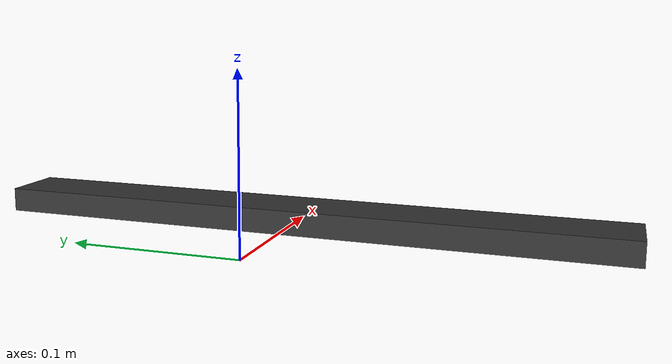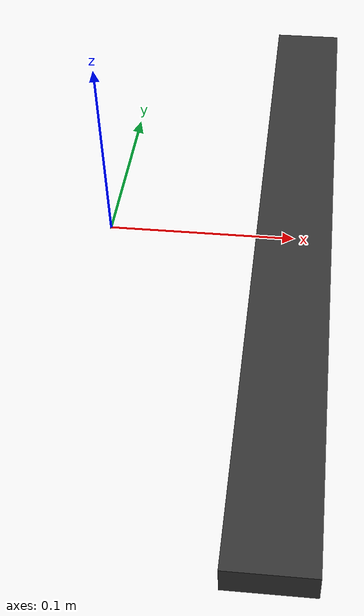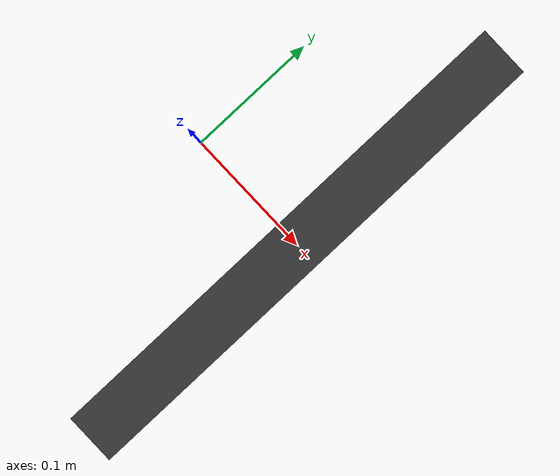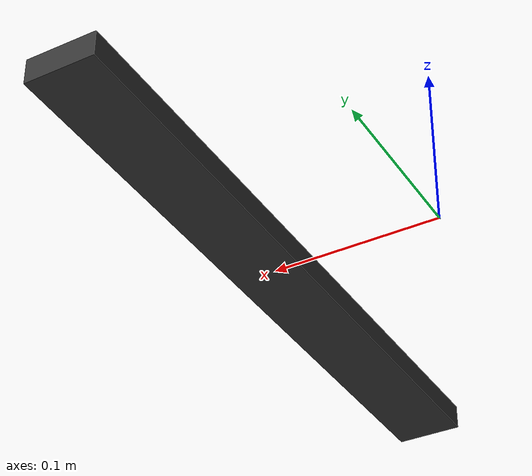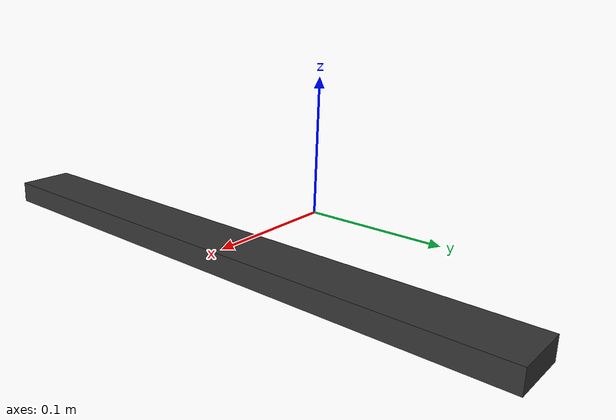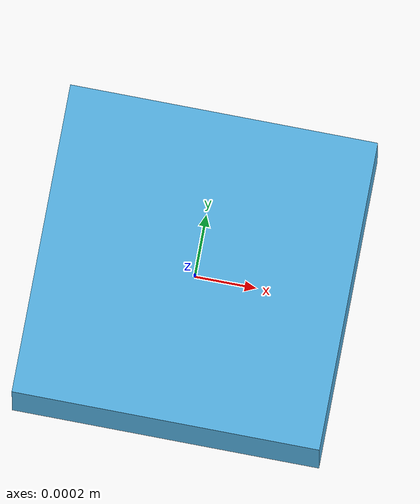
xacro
<?xml version="1.0"?>
<robot name="ribot" xmlns:xacro="http://ros.org/wiki/xacro">

    <!-- ribot is a simple robotic system containing one rgb camera and an imu on top of a tripop.  -->

    <!-- Define  properties -->
    <xacro:property name="M_PI" value="3.1415926535897931" />
    <material name="Orange">
        <color rgba="1.0 0.4 0.0 1.0"/>
    </material>

    <!-- Colors -->
    <material name="tripod_color">
        <color rgba="0.21 0.21 .21 1"/>
    </material>

    <xacro:macro name="default_inertial">
        <inertial>
            <mass value="1"/>
            <inertia ixx="1.0" ixy="0.0" ixz="0.0" iyy="1.0" iyz="0.0" izz="1.0" />
        </inertial>
    </xacro:macro>

    <!-- Includes -->
    <xacro:include filename="$(find ribot_description)/urdf/robot.gazebo.xacro" />
    <xacro:include filename="$(find ribot_description)/urdf/rgb_camera.urdf.xacro" />
    <xacro:include filename="$(find ribot_description)/urdf/imu.urdf.xacro"/>

    <link name="base_link">
        <xacro:default_inertial />
    </link>

    <joint name="base_link_to_prismatic_x" type="prismatic">
        <origin xyz="0 0 0" rpy="0 0 0"/>
        <parent link="base_link"/>
        <child link="prismatic_x"/>
        <axis xyz="1 0 0"/>
        <limit effort="1000.0" lower="-0.38" upper="0" velocity="0.5"/>
    </joint>

    <link name="prismatic_x">
        <visual>
            <origin xyz="0 0 0" rpy="0 0 0" />
            <geometry>
                <box size="0.001 0.001 0.001" />
            </geometry>
        </visual>
        <collision>
            <origin xyz="0 0 0" rpy="0 0 0" />
            <geometry>
                <box size="0.001 0.001 0.001" />
            </geometry>
        </collision>
        <xacro:default_inertial />
        <gazebo>
            <gravity>0</gravity>
        </gazebo>
    </link>

    <joint name="prismatic_x_to_plate" type="fixed">
        <parent link="prismatic_x"/>
        <child link="plate"/>
        <origin xyz="0.1 0 0" rpy="0 0 0"/>
    </joint>

    <link name="plate">
        <visual>
            <origin xyz="0 0 0" rpy="0 0 0" />
            <geometry>
                <box size="0.04 0.4 0.015" />
            </geometry>
            <material name="tripod_color" />
        </visual>
        <collision name="tripod_collision">
            <origin xyz="0 0 0" rpy="0 0 0" />
            <geometry>
                <box size="0.04 0.15 0.015" />
            </geometry>
        </collision>
        <xacro:default_inertial />
    </link>

    <!-- GAZEBO -->
    <!-- ROS control plugin -->
    <gazebo>
        <plugin name="gazebo_ros_control" filename="libgazebo_ros_control.so">
            <namespace>/ribot</namespace>
        </plugin>
    </gazebo>

    <!-- Transmissions -->
    <transmission name="base_link_to_prismatic_x_trans">
        <type>transmission_interfact/SimpleTransmission</type>
        <actuator name="motor1">
            <mechanicalReduction>1</mechanicalReduction>
        </actuator>
        <joint name="base_link_to_prismatic_x">
            <hardwareInterface>hardware_interface/PositionJointInterface</hardwareInterface>
        </joint>
    </transmission>

    <!-- SENSORS -->
    <!-- Left IMU -->

    <!-- Right Camera -->

</robot>
